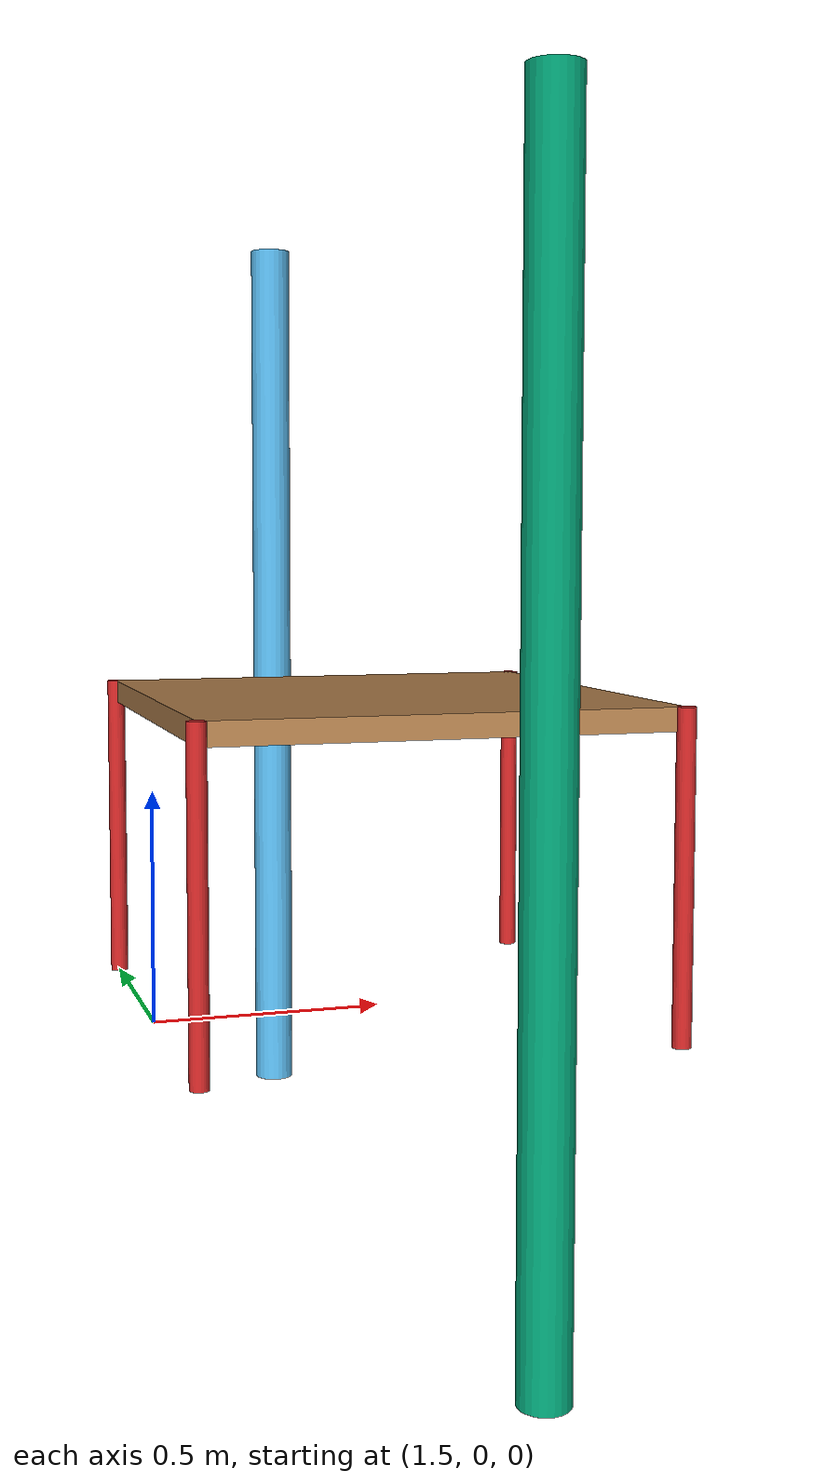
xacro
<?xml version="1.0" ?>
<robot xmlns:xacro="http://www.ros.org/wiki/xacro"
	name="mobile-robot-obstacle">

  <!-- properties -->
  <property name="table_height" value="0.7" />
  <property name="table_width" value="1.0" />
  <property name="table_depth" value="1.0" />
  <property name="leg_radius" value="0.02" />
  <property name="table_x" value="2" />
  <property name="table_y" value="0.0" />
  <property name="table_z" value="0.0" />

  <property name="table_top_thickness" value="0.05"/>

  <property name="M_PI" value="3.1415926535897931" />

  <xacro:include filename="$(find araig_gazebo_worlds)/urdf/common.xacro" />
  <xacro:include filename="$(find araig_gazebo_worlds)/urdf/materials.urdf.xacro" />

  <xacro:macro name="new_box" params="new_box_name box_width box_length box_height material parent *origin">
    <link name="box_${new_box_name}">
      <visual>
        <origin xyz="0 0 0" rpy="0 0 0"/>
        <geometry>
	      <box size="${box_length} ${box_width} ${box_height}"/>
        </geometry>
      </visual>
    <inertial>
      <mass value="1.0" />
      <origin xyz="${table_x} ${table_y} ${table_z+table_height-table_top_thickness/2}" />
      <inertia ixx="1" ixy="0"  ixz="0"
               iyy="1" iyz="0"
               izz="1" />
    </inertial>
    </link>
    <gazebo reference="box_${new_box_name}">
      <material>${material}</material>
    </gazebo>
    <joint name="joint_box_${new_box_name}" type="fixed">
       <xacro:insert_block name="origin"/>
       <parent link="${parent}"/>
       <child link="box_${new_box_name}"/>
    </joint>
  </xacro:macro>

  <xacro:macro name="new_cylinder" params="new_cylinder_name cylinder_diameter cylinder_height material parent *origin pose">
    <link name="cylinder_${new_cylinder_name}">
      <visual>
        <origin xyz="0 0 0" rpy="0 0 0"/>
        <geometry>
              <cylinder length="${cylinder_height}" radius="${cylinder_diameter/2}"/>
        </geometry>
      </visual>
      <xacro:default_inertial/>
    </link>
    <gazebo reference="cylinder_${new_cylinder_name}">
      <material>${material}</material>
	<light name='cylinder_${new_cylinder_name}/light_source1' type='spot'>
		  <pose>${pose}</pose>
		  <attenuation>
		    <range>40</range>
		    <linear>0.05</linear>
		    <constant>-0.2</constant>
		  </attenuation>
		  <diffuse>0 1 0 1</diffuse>
		  <specular>0 1 0 1</specular>
		  <spot>
		    <inner_angle>0.3</inner_angle>
		    <outer_angle>0.35</outer_angle>
		    <falloff>1</falloff>
		  </spot>
	</light>
	  <plugin name='light_control' filename='libFlashLightPlugin.so'>
	      <enable>true</enable>
	      <light>
		<id>'cylinder_${new_cylinder_name}'/light_source1</id>
		<duration>0.5</duration>
		<interval>0.5</interval>
		<color>1 1 1</color>
	      </light>
	   </plugin>
	  <selfCollide>false</selfCollide>
    </gazebo>
    <joint name="joint_box_${new_cylinder_name}" type="fixed">
       <xacro:insert_block name="origin"/>
       <parent link="${parent}"/>
       <child link="cylinder_${new_cylinder_name}"/>
    </joint>
  </xacro:macro>

  <!-- world link -->
  <link name="world" />

  <xacro:new_cylinder new_cylinder_name="light_1" cylinder_height ="2.25" cylinder_diameter="0.1"  material="experiments/wall" parent="box_table_top" pose="0 1 1.2 -0.55 0.1 0">
  <origin xyz="0 1 0" rpy="0 0 0"/>
  </xacro:new_cylinder>

  <xacro:new_cylinder new_cylinder_name="light_2" cylinder_height ="2.25" cylinder_diameter="0.1"  material="experiments/wall" parent="box_table_top" pose="0 -1 1.2  0.55 0.1 0">
  <origin xyz="0 -1 0" rpy="0 0 0"/>
  </xacro:new_cylinder>

   <!-- table top -->
  <xacro:new_box new_box_name="table_top" box_width ="${table_width}" box_length="${table_depth}" box_height="${table_top_thickness}" material="experiments/woodfloor" parent="world">
  <origin xyz="${table_x} ${table_y} ${table_z+table_height-table_top_thickness/2}" rpy="0 0 0"/>
  </xacro:new_box>

<joint name="leg1_joint" type="fixed" >
    <parent link="world" />
    <origin xyz="${table_x+table_width/2} ${table_y+table_depth/2} ${table_z+table_height}" rpy="0 0 0" />
    <child link="leg1_link" />
  </joint>
  <link name="leg1_link">
    <inertial>
      <mass value="1.0" />
      <origin xyz="0 0 ${-table_height/2}" />
      <inertia ixx="0.1" ixy="0"  ixz="0"
               iyy="0.1" iyz="0"
               izz="0.01" />
    </inertial>
    <visual>
      <origin xyz="0.0 0.0 ${-table_height/2}" rpy="0 0 0" />
      <geometry>
        <cylinder radius="${leg_radius}" length="${table_height}" />
      </geometry>
    </visual>
  </link>
  <gazebo reference="leg1_link">
    <material>Gazebo/Red</material>
    <mu1>1000.0</mu1>
    <mu2>1000.0</mu2>
    <kp>10000000.0</kp>
    <kd>1.0</kd>
    <selfCollide>true</selfCollide>
  </gazebo>

  <joint name="leg2_joint" type="fixed" >
    <parent link="world" />
    <origin xyz="${table_x-table_width/2} ${table_y+table_depth/2} ${table_z+table_height}" rpy="0 0 0" />
    <child link="leg2_link" />
  </joint>
  <link name="leg2_link">
    <inertial>
      <mass value="1.0" />
      <origin xyz="0 0 ${-table_height/2}" />
      <inertia ixx="0.1" ixy="0"  ixz="0"
               iyy="0.1" iyz="0"
               izz="0.01" />
    </inertial>
    <visual>
      <origin xyz="0.0 0.0 ${-table_height/2}" rpy="0 0 0" />
      <geometry>
        <cylinder radius="${leg_radius}" length="${table_height}" />
      </geometry>
    </visual>
  </link>
  <gazebo reference="leg2_link">
    <material>Gazebo/Red</material>
    <mu1>1000.0</mu1>
    <mu2>1000.0</mu2>
    <kp>10000000.0</kp>
    <kd>1.0</kd>
    <selfCollide>true</selfCollide>
  </gazebo>

  <joint name="leg3_joint" type="fixed" >
    <parent link="world" />
    <origin xyz="${table_x+table_width/2} ${table_y-table_depth/2} ${table_z+table_height}" rpy="0 0 0" />
    <child link="leg3_link" />
  </joint>
  <link name="leg3_link">
    <inertial>
      <mass value="1.0" />
      <origin xyz="0 0 ${-table_height/2}" />
      <inertia ixx="0.1" ixy="0"  ixz="0"
               iyy="0.1" iyz="0"
               izz="0.01" />
    </inertial>
    <visual>
      <origin xyz="0.0 0.0 ${-table_height/2}" rpy="0 0 0" />
      <geometry>
        <cylinder radius="${leg_radius}" length="${table_height}" />
      </geometry>
    </visual>
  </link>
  <gazebo reference="leg3_link">
    <material>Gazebo/Red</material>
    <mu1>1000.0</mu1>
    <mu2>1000.0</mu2>
    <kp>10000000.0</kp>
    <kd>1.0</kd>
    <selfCollide>true</selfCollide>
  </gazebo>

  <joint name="leg4_joint" type="fixed" >
    <parent link="world" />
    <origin xyz="${table_x-table_width/2} ${table_y-table_depth/2} ${table_z+table_height}" rpy="0 0 0" />
    <child link="leg4_link" />
  </joint>
  <link name="leg4_link">
    <inertial>
      <mass value="1.0" />
      <origin xyz="0 0 ${-table_height/2}" />
      <inertia ixx="0.1" ixy="0"  ixz="0"
               iyy="0.1" iyz="0"
               izz="0.01" />
    </inertial>
    <visual>
      <origin xyz="0.0 0.0 ${-table_height/2}" rpy="0 0 0" />
      <geometry>
        <cylinder radius="${leg_radius}" length="${table_height}" />
      </geometry>
    </visual>
  </link>
  <gazebo reference="leg4_link">
    <material>Gazebo/Red</material>
    <mu1>1000.0</mu1>
    <mu2>1000.0</mu2>
    <kp>10000000.0</kp>
    <kd>1.0</kd>
    <selfCollide>true</selfCollide>
  </gazebo>
  <gazebo>
    <static>true</static>
    <canonicalBody>world</canonicalBody>
  </gazebo>

</robot>

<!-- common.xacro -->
<robot xmlns:xacro="http://www.ros.org/wiki/xacro">

  <xacro:property name="M_PI" value="3.1415926535897931" />

  <!-- see https://secure.wikimedia.org/wikipedia/en/wiki/List_of_moment_of_inertia_tensors -->
  <xacro:macro name="sphere_inertial" params="radius mass *origin">
    <inertial>
      <mass value="${mass}" />
      <xacro:insert_block name="origin" />
      <inertia ixx="${0.4 * mass * radius * radius}" ixy="0.0" ixz="0.0"
        iyy="${0.4 * mass * radius * radius}" iyz="0.0"
        izz="${0.4 * mass * radius * radius}" />
    </inertial>
  </xacro:macro>

  <xacro:macro name="cylinder_inertial" params="radius length mass *origin">
    <inertial>
      <mass value="${mass}" />
      <xacro:insert_block name="origin" />
      <inertia ixx="${0.0833333 * mass * (3 * radius * radius + length * length)}" ixy="0.0" ixz="0.0"
        iyy="${0.0833333 * mass * (3 * radius * radius + length * length)}" iyz="0.0"
        izz="${0.5 * mass * radius * radius}" />
    </inertial>
  </xacro:macro>

  <xacro:macro name="box_inertial" params="x y z mass *origin">
    <inertial>
      <mass value="${mass}" />
      <xacro:insert_block name="origin" />
      <inertia ixx="${0.0833333 * mass * (y*y + z*z)}" ixy="0.0" ixz="0.0"
        iyy="${0.0833333 * mass * (x*x + z*z)}" iyz="0.0"
        izz="${0.0833333 * mass * (x*x + y*y)}" />
    </inertial>
  </xacro:macro>

  <xacro:macro name="default_inertial">
    <inertial>
      <mass value="0.01"/>
      <origin xyz="0 0 0"/>
      <inertia ixx="0.001" ixy="0.0" ixz="0.0" iyy="0.001" iyz="0.0" izz="0.001" />
    </inertial>
  </xacro:macro>

  <xacro:macro name="table_inertial" params="x y z mass *origin">
    <inertial>
      <mass value="${mass}" />
      <xacro:insert_block name="origin" />
      <inertia ixx="1" ixy="0"  ixz="0"
               iyy="1" iyz="0"
               izz="1" />
    </inertial>
  </xacro:macro>
</robot>
